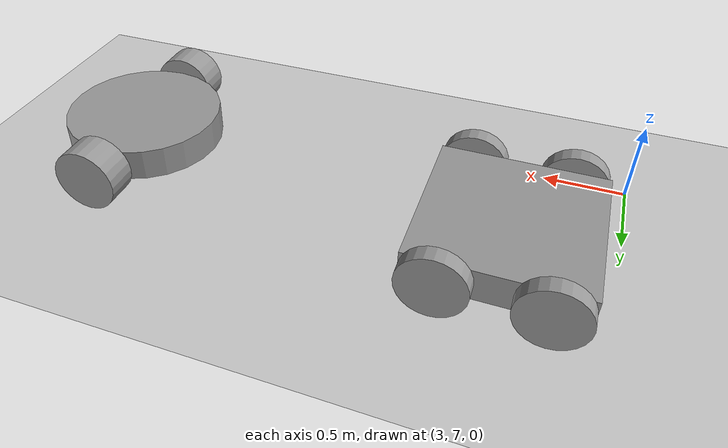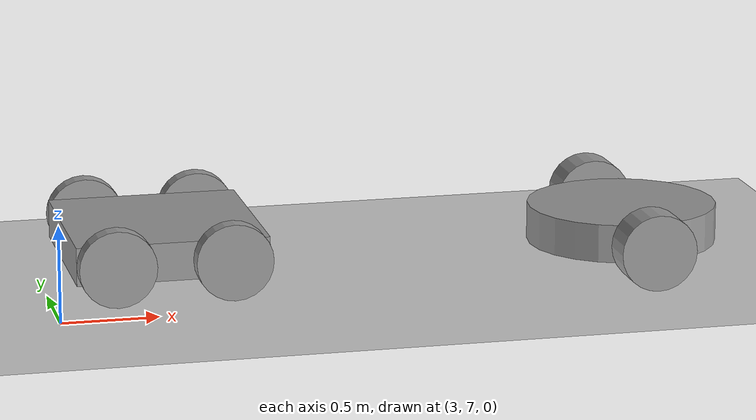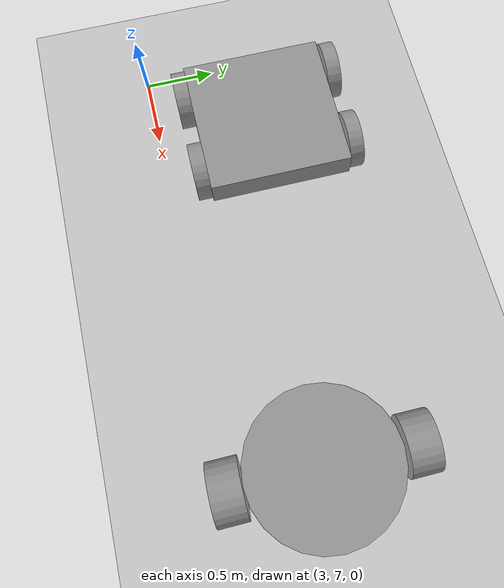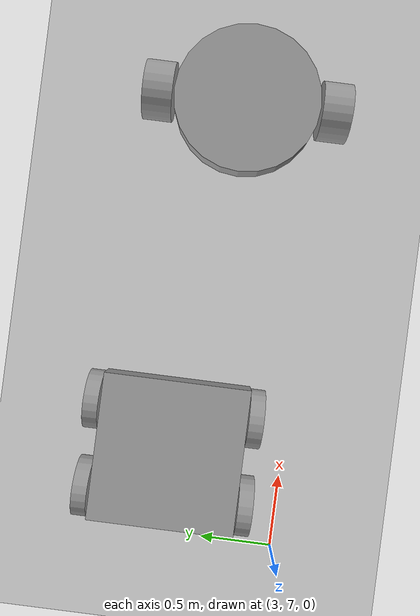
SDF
<sdf version="1.7">
 <world name="default">
  <model name="ground_plane">
   <static>1</static>
   <link name="link">
    <collision name="collision">
     <geometry><plane><normal>0 0 1</normal><size>100 100</size></plane></geometry>
     <surface>
      <contact><collide_bitmask>65535</collide_bitmask></contact>
      <friction><ode><mu>100</mu><mu2>50</mu2></ode></friction>
     </surface>
    </collision>
    <visual name="visual">
     <cast_shadows>0</cast_shadows>
     <geometry><plane><normal>0 0 1</normal><size>100 100</size></plane></geometry>
     <material>
      <script><uri>file://media/materials/scripts/gazebo.material</uri><name>Gazebo/Grey</name></script>
     </material>
    </visual>
   </link>
  </model>
  <model name="robot4">
   <link name="link_0">
    <inertial>
     <mass>1</mass>
     <inertia>
      <ixx>0.166667</ixx>
      <ixy>0</ixy>
      <ixz>0</ixz>
      <iyy>0.166667</iyy>
      <iyz>0</iyz>
      <izz>0.166667</izz>
     </inertia>
    </inertial>
    <visual name="visual">
     <geometry><box><size>1 1 0.2</size></box></geometry>
     <material>
      <lighting>1</lighting>
      <script><uri>file://media/materials/scripts/gazebo.material</uri><name>Gazebo/Grey</name></script>
      <shader type="pixel"><normal_map>__default__</normal_map></shader>
      <ambient>0.3 0.3 0.3 1</ambient>
      <diffuse>0.7 0.7 0.7 1</diffuse>
      <specular>0.01 0.01 0.01 1</specular>
      <emissive>0 0 0 1</emissive>
     </material>
    </visual>
    <collision name="collision">
     <geometry><box><size>1 1 0.2</size></box></geometry>
     <surface>
      <friction>
       <ode><mu>1</mu><mu2>1</mu2><fdir1>0 0 0</fdir1><slip1>0</slip1><slip2>0</slip2></ode>
       <torsional>
        <coefficient>1</coefficient>
        <patch_radius>0</patch_radius>
        <surface_radius>0</surface_radius>
        <use_patch_radius>1</use_patch_radius>
        <ode><slip>0</slip></ode>
       </torsional>
      </friction>
      <bounce><restitution_coefficient>0</restitution_coefficient><threshold>1e+06</threshold></bounce>
      <contact>
       <collide_without_contact>0</collide_without_contact>
       <collide_without_contact_bitmask>1</collide_without_contact_bitmask>
       <collide_bitmask>1</collide_bitmask>
       <ode>
        <soft_cfm>0</soft_cfm>
        <soft_erp>0.2</soft_erp>
        <kp>1e+13</kp>
        <kd>1</kd>
        <max_vel>0.01</max_vel>
        <min_depth>0</min_depth>
       </ode>
       <bullet>
        <split_impulse>1</split_impulse>
        <split_impulse_penetration_threshold>-0.01</split_impulse_penetration_threshold>
        <soft_cfm>0</soft_cfm>
        <soft_erp>0.2</soft_erp>
        <kp>1e+13</kp>
        <kd>1</kd>
       </bullet>
      </contact>
     </surface>
    </collision>
   </link>
   <link name="link_1">
    <inertial>
     <mass>1</mass>
     <inertia><ixx>0.145833</ixx><ixy>0</ixy><ixz>0</ixz><iyy>0.145833</iyy><iyz>0</iyz><izz>0.125</izz></inertia>
    </inertial>
    <pose>0.3 -0.550019 0 1.5707 -0 0</pose>
    <visual name="visual">
     <geometry><cylinder><radius>0.2</radius><length>0.1</length></cylinder></geometry>
     <material>
      <lighting>1</lighting>
      <script><uri>file://media/materials/scripts/gazebo.material</uri><name>Gazebo/Grey</name></script>
      <shader type="pixel"><normal_map>__default__</normal_map></shader>
      <ambient>0.3 0.3 0.3 1</ambient>
      <diffuse>0.7 0.7 0.7 1</diffuse>
      <specular>0.01 0.01 0.01 1</specular>
      <emissive>0 0 0 1</emissive>
     </material>
    </visual>
    <collision name="collision">
     <geometry><cylinder><radius>0.2</radius><length>0.1</length></cylinder></geometry>
     <surface>
      <friction>
       <ode><mu>1</mu><mu2>1</mu2><fdir1>0 0 0</fdir1><slip1>0</slip1><slip2>0</slip2></ode>
       <torsional>
        <coefficient>1</coefficient>
        <patch_radius>0</patch_radius>
        <surface_radius>0</surface_radius>
        <use_patch_radius>1</use_patch_radius>
        <ode><slip>0</slip></ode>
       </torsional>
      </friction>
      <bounce><restitution_coefficient>0</restitution_coefficient><threshold>1e+06</threshold></bounce>
      <contact>
       <collide_without_contact>0</collide_without_contact>
       <collide_without_contact_bitmask>1</collide_without_contact_bitmask>
       <collide_bitmask>1</collide_bitmask>
       <ode>
        <soft_cfm>0</soft_cfm>
        <soft_erp>0.2</soft_erp>
        <kp>1e+13</kp>
        <kd>1</kd>
        <max_vel>0.01</max_vel>
        <min_depth>0</min_depth>
       </ode>
       <bullet>
        <split_impulse>1</split_impulse>
        <split_impulse_penetration_threshold>-0.01</split_impulse_penetration_threshold>
        <soft_cfm>0</soft_cfm>
        <soft_erp>0.2</soft_erp>
        <kp>1e+13</kp>
        <kd>1</kd>
       </bullet>
      </contact>
     </surface>
    </collision>
   </link>
   <link name="link_1_clone">
    <inertial>
     <mass>1</mass>
     <inertia><ixx>0.145833</ixx><ixy>0</ixy><ixz>0</ixz><iyy>0.145833</iyy><iyz>0</iyz><izz>0.125</izz></inertia>
    </inertial>
    <pose>0.3 0.550019 0 1.5707 -0 0</pose>
    <visual name="visual">
     <geometry><cylinder><radius>0.2</radius><length>0.1</length></cylinder></geometry>
     <material>
      <lighting>1</lighting>
      <script><uri>file://media/materials/scripts/gazebo.material</uri><name>Gazebo/Grey</name></script>
      <shader type="pixel"><normal_map>__default__</normal_map></shader>
      <ambient>0.3 0.3 0.3 1</ambient>
      <diffuse>0.7 0.7 0.7 1</diffuse>
      <specular>0.01 0.01 0.01 1</specular>
      <emissive>0 0 0 1</emissive>
     </material>
    </visual>
    <collision name="collision">
     <geometry><cylinder><radius>0.2</radius><length>0.1</length></cylinder></geometry>
     <surface>
      <friction>
       <ode><mu>1</mu><mu2>1</mu2><fdir1>0 0 0</fdir1><slip1>0</slip1><slip2>0</slip2></ode>
       <torsional>
        <coefficient>1</coefficient>
        <patch_radius>0</patch_radius>
        <surface_radius>0</surface_radius>
        <use_patch_radius>1</use_patch_radius>
        <ode><slip>0</slip></ode>
       </torsional>
      </friction>
      <bounce><restitution_coefficient>0</restitution_coefficient><threshold>1e+06</threshold></bounce>
      <contact>
       <collide_without_contact>0</collide_without_contact>
       <collide_without_contact_bitmask>1</collide_without_contact_bitmask>
       <collide_bitmask>1</collide_bitmask>
       <ode>
        <soft_cfm>0</soft_cfm>
        <soft_erp>0.2</soft_erp>
        <kp>1e+13</kp>
        <kd>1</kd>
        <max_vel>0.01</max_vel>
        <min_depth>0</min_depth>
       </ode>
       <bullet>
        <split_impulse>1</split_impulse>
        <split_impulse_penetration_threshold>-0.01</split_impulse_penetration_threshold>
        <soft_cfm>0</soft_cfm>
        <soft_erp>0.2</soft_erp>
        <kp>1e+13</kp>
        <kd>1</kd>
       </bullet>
      </contact>
     </surface>
    </collision>
   </link>
   <link name="link_1_clone_0">
    <inertial>
     <mass>1</mass>
     <inertia><ixx>0.145833</ixx><ixy>0</ixy><ixz>0</ixz><iyy>0.145833</iyy><iyz>0</iyz><izz>0.125</izz></inertia>
    </inertial>
    <pose>-0.3 0.550019 0 1.5707 -0 0</pose>
    <visual name="visual">
     <geometry><cylinder><radius>0.2</radius><length>0.1</length></cylinder></geometry>
     <material>
      <lighting>1</lighting>
      <script><uri>file://media/materials/scripts/gazebo.material</uri><name>Gazebo/Grey</name></script>
      <shader type="pixel"><normal_map>__default__</normal_map></shader>
      <ambient>0.3 0.3 0.3 1</ambient>
      <diffuse>0.7 0.7 0.7 1</diffuse>
      <specular>0.01 0.01 0.01 1</specular>
      <emissive>0 0 0 1</emissive>
     </material>
    </visual>
    <collision name="collision">
     <geometry><cylinder><radius>0.2</radius><length>0.1</length></cylinder></geometry>
     <surface>
      <friction>
       <ode><mu>1</mu><mu2>1</mu2><fdir1>0 0 0</fdir1><slip1>0</slip1><slip2>0</slip2></ode>
       <torsional>
        <coefficient>1</coefficient>
        <patch_radius>0</patch_radius>
        <surface_radius>0</surface_radius>
        <use_patch_radius>1</use_patch_radius>
        <ode><slip>0</slip></ode>
       </torsional>
      </friction>
      <bounce><restitution_coefficient>0</restitution_coefficient><threshold>1e+06</threshold></bounce>
      <contact>
       <collide_without_contact>0</collide_without_contact>
       <collide_without_contact_bitmask>1</collide_without_contact_bitmask>
       <collide_bitmask>1</collide_bitmask>
       <ode>
        <soft_cfm>0</soft_cfm>
        <soft_erp>0.2</soft_erp>
        <kp>1e+13</kp>
        <kd>1</kd>
        <max_vel>0.01</max_vel>
        <min_depth>0</min_depth>
       </ode>
       <bullet>
        <split_impulse>1</split_impulse>
        <split_impulse_penetration_threshold>-0.01</split_impulse_penetration_threshold>
        <soft_cfm>0</soft_cfm>
        <soft_erp>0.2</soft_erp>
        <kp>1e+13</kp>
        <kd>1</kd>
       </bullet>
      </contact>
     </surface>
    </collision>
   </link>
   <link name="link_1_clone_1">
    <inertial>
     <mass>1</mass>
     <inertia><ixx>0.145833</ixx><ixy>0</ixy><ixz>0</ixz><iyy>0.145833</iyy><iyz>0</iyz><izz>0.125</izz></inertia>
    </inertial>
    <pose>-0.3 -0.550019 0 1.5707 -0 0</pose>
    <visual name="visual">
     <geometry><cylinder><radius>0.2</radius><length>0.1</length></cylinder></geometry>
     <material>
      <lighting>1</lighting>
      <script><uri>file://media/materials/scripts/gazebo.material</uri><name>Gazebo/Grey</name></script>
      <shader type="pixel"><normal_map>__default__</normal_map></shader>
      <ambient>0.3 0.3 0.3 1</ambient>
      <diffuse>0.7 0.7 0.7 1</diffuse>
      <specular>0.01 0.01 0.01 1</specular>
      <emissive>0 0 0 1</emissive>
     </material>
    </visual>
    <collision name="collision">
     <geometry><cylinder><radius>0.2</radius><length>0.1</length></cylinder></geometry>
     <surface>
      <friction>
       <ode><mu>1</mu><mu2>1</mu2><fdir1>0 0 0</fdir1><slip1>0</slip1><slip2>0</slip2></ode>
       <torsional>
        <coefficient>1</coefficient>
        <patch_radius>0</patch_radius>
        <surface_radius>0</surface_radius>
        <use_patch_radius>1</use_patch_radius>
        <ode><slip>0</slip></ode>
       </torsional>
      </friction>
      <bounce><restitution_coefficient>0</restitution_coefficient><threshold>1e+06</threshold></bounce>
      <contact>
       <collide_without_contact>0</collide_without_contact>
       <collide_without_contact_bitmask>1</collide_without_contact_bitmask>
       <collide_bitmask>1</collide_bitmask>
       <ode>
        <soft_cfm>0</soft_cfm>
        <soft_erp>0.2</soft_erp>
        <kp>1e+13</kp>
        <kd>1</kd>
        <max_vel>0.01</max_vel>
        <min_depth>0</min_depth>
       </ode>
       <bullet>
        <split_impulse>1</split_impulse>
        <split_impulse_penetration_threshold>-0.01</split_impulse_penetration_threshold>
        <soft_cfm>0</soft_cfm>
        <soft_erp>0.2</soft_erp>
        <kp>1e+13</kp>
        <kd>1</kd>
       </bullet>
      </contact>
     </surface>
    </collision>
   </link>
   <joint name="link_0_JOINT_1" type="revolute">
    <parent>link_0</parent>
    <child>link_1</child>
    <pose>0 0 0 -0.01 -0 -0.01</pose>
    <axis>
     <xyz>0 0 1</xyz>
     <limit>
      <lower>-1.79769e+308</lower>
      <upper>1.79769e+308</upper>
      <effort>-1</effort>
      <velocity>-1</velocity>
     </limit>
     <dynamics>
      <spring_reference>0</spring_reference>
      <spring_stiffness>0</spring_stiffness>
      <damping>0</damping>
     </dynamics>
    </axis>
    <physics>
     <ode><limit><cfm>0</cfm><erp>0.2</erp></limit><suspension><cfm>0</cfm><erp>0.2</erp></suspension></ode>
    </physics>
   </joint>
   <joint name="link_0_JOINT_4" type="revolute">
    <parent>link_0</parent>
    <child>link_1_clone_0</child>
    <axis>
     <xyz>0 0 1</xyz>
     <limit>
      <lower>-1.79769e+308</lower>
      <upper>1.79769e+308</upper>
      <effort>-1</effort>
      <velocity>-1</velocity>
     </limit>
     <dynamics>
      <spring_reference>0</spring_reference>
      <spring_stiffness>0</spring_stiffness>
      <damping>0</damping>
     </dynamics>
    </axis>
    <physics>
     <ode><limit><cfm>0</cfm><erp>0.2</erp></limit><suspension><cfm>0</cfm><erp>0.2</erp></suspension></ode>
    </physics>
   </joint>
   <joint name="link_0_JOINT_5" type="revolute">
    <parent>link_0</parent>
    <child>link_1_clone_1</child>
    <axis>
     <xyz>0 0 1</xyz>
     <limit>
      <lower>-1.79769e+308</lower>
      <upper>1.79769e+308</upper>
      <effort>-1</effort>
      <velocity>-1</velocity>
     </limit>
     <dynamics>
      <spring_reference>0</spring_reference>
      <spring_stiffness>0</spring_stiffness>
      <damping>0</damping>
     </dynamics>
    </axis>
    <physics>
     <ode><limit><cfm>0</cfm><erp>0.2</erp></limit><suspension><cfm>0</cfm><erp>0.2</erp></suspension></ode>
    </physics>
   </joint>
   <joint name="link_0_JOINT_6" type="revolute">
    <parent>link_0</parent>
    <child>link_1_clone</child>
    <axis>
     <xyz>0 0 1</xyz>
     <limit>
      <lower>-1.79769e+308</lower>
      <upper>1.79769e+308</upper>
      <effort>-1</effort>
      <velocity>-1</velocity>
     </limit>
     <dynamics>
      <spring_reference>0</spring_reference>
      <spring_stiffness>0</spring_stiffness>
      <damping>0</damping>
     </dynamics>
    </axis>
    <physics>
     <ode><limit><cfm>0</cfm><erp>0.2</erp></limit><suspension><cfm>0</cfm><erp>0.2</erp></suspension></ode>
    </physics>
   </joint>
   <static>0</static>
   <pose>3.6258 7.79211 0.200005 0 -0 -7.6e-05</pose>
  </model>
  <model name="robotc">
   <link name="link_0">
    <inertial>
     <mass>1</mass>
     <inertia><ixx>0.145833</ixx><ixy>0</ixy><ixz>0</ixz><iyy>0.145833</iyy><iyz>0</iyz><izz>0.125</izz></inertia>
    </inertial>
    <pose>0 1e-06 0 0 -0 0</pose>
    <visual name="visual">
     <geometry><cylinder><radius>0.5</radius><length>0.2</length></cylinder></geometry>
     <material>
      <lighting>1</lighting>
      <script><uri>file://media/materials/scripts/gazebo.material</uri><name>Gazebo/Grey</name></script>
      <shader type="pixel"><normal_map>__default__</normal_map></shader>
      <ambient>0.3 0.3 0.3 1</ambient>
      <diffuse>0.7 0.7 0.7 1</diffuse>
      <specular>0.01 0.01 0.01 1</specular>
      <emissive>0 0 0 1</emissive>
     </material>
    </visual>
    <collision name="collision">
     <geometry><cylinder><radius>0.5</radius><length>0.2</length></cylinder></geometry>
     <surface>
      <friction>
       <ode><mu>1</mu><mu2>1</mu2><fdir1>0 0 0</fdir1><slip1>0</slip1><slip2>0</slip2></ode>
       <torsional>
        <coefficient>1</coefficient>
        <patch_radius>0</patch_radius>
        <surface_radius>0</surface_radius>
        <use_patch_radius>1</use_patch_radius>
        <ode><slip>0</slip></ode>
       </torsional>
      </friction>
      <bounce><restitution_coefficient>0</restitution_coefficient><threshold>1e+06</threshold></bounce>
      <contact>
       <collide_without_contact>0</collide_without_contact>
       <collide_without_contact_bitmask>1</collide_without_contact_bitmask>
       <collide_bitmask>1</collide_bitmask>
       <ode>
        <soft_cfm>0</soft_cfm>
        <soft_erp>0.2</soft_erp>
        <kp>1e+13</kp>
        <kd>1</kd>
        <max_vel>0.01</max_vel>
        <min_depth>0</min_depth>
       </ode>
       <bullet>
        <split_impulse>1</split_impulse>
        <split_impulse_penetration_threshold>-0.01</split_impulse_penetration_threshold>
        <soft_cfm>0</soft_cfm>
        <soft_erp>0.2</soft_erp>
        <kp>1e+13</kp>
        <kd>1</kd>
       </bullet>
      </contact>
     </surface>
    </collision>
   </link>
   <link name="link_1">
    <inertial>
     <mass>1</mass>
     <inertia><ixx>0.145833</ixx><ixy>0</ixy><ixz>0</ixz><iyy>0.145833</iyy><iyz>0</iyz><izz>0.125</izz></inertia>
    </inertial>
    <pose>0 -0.600019 0 1.5707 -0 0</pose>
    <visual name="visual">
     <geometry><cylinder><radius>0.2</radius><length>0.2</length></cylinder></geometry>
     <material>
      <lighting>1</lighting>
      <script><uri>file://media/materials/scripts/gazebo.material</uri><name>Gazebo/Grey</name></script>
      <shader type="pixel"><normal_map>__default__</normal_map></shader>
      <ambient>0.3 0.3 0.3 1</ambient>
      <diffuse>0.7 0.7 0.7 1</diffuse>
      <specular>0.01 0.01 0.01 1</specular>
      <emissive>0 0 0 1</emissive>
     </material>
    </visual>
    <collision name="collision">
     <geometry><cylinder><radius>0.2</radius><length>0.2</length></cylinder></geometry>
     <surface>
      <friction>
       <ode><mu>1</mu><mu2>1</mu2><fdir1>0 0 0</fdir1><slip1>0</slip1><slip2>0</slip2></ode>
       <torsional>
        <coefficient>1</coefficient>
        <patch_radius>0</patch_radius>
        <surface_radius>0</surface_radius>
        <use_patch_radius>1</use_patch_radius>
        <ode><slip>0</slip></ode>
       </torsional>
      </friction>
      <bounce><restitution_coefficient>0</restitution_coefficient><threshold>1e+06</threshold></bounce>
      <contact>
       <collide_without_contact>0</collide_without_contact>
       <collide_without_contact_bitmask>1</collide_without_contact_bitmask>
       <collide_bitmask>1</collide_bitmask>
       <ode>
        <soft_cfm>0</soft_cfm>
        <soft_erp>0.2</soft_erp>
        <kp>1e+13</kp>
        <kd>1</kd>
        <max_vel>0.01</max_vel>
        <min_depth>0</min_depth>
       </ode>
       <bullet>
        <split_impulse>1</split_impulse>
        <split_impulse_penetration_threshold>-0.01</split_impulse_penetration_threshold>
        <soft_cfm>0</soft_cfm>
        <soft_erp>0.2</soft_erp>
        <kp>1e+13</kp>
        <kd>1</kd>
       </bullet>
      </contact>
     </surface>
    </collision>
   </link>
   <link name="link_1_clone">
    <inertial>
     <mass>1</mass>
     <inertia><ixx>0.145833</ixx><ixy>0</ixy><ixz>0</ixz><iyy>0.145833</iyy><iyz>0</iyz><izz>0.125</izz></inertia>
    </inertial>
    <pose>0 0.60002 0 1.5707 -0 0</pose>
    <visual name="visual">
     <geometry><cylinder><radius>0.2</radius><length>0.2</length></cylinder></geometry>
     <material>
      <lighting>1</lighting>
      <script><uri>file://media/materials/scripts/gazebo.material</uri><name>Gazebo/Grey</name></script>
      <shader type="pixel"><normal_map>__default__</normal_map></shader>
      <ambient>0.3 0.3 0.3 1</ambient>
      <diffuse>0.7 0.7 0.7 1</diffuse>
      <specular>0.01 0.01 0.01 1</specular>
      <emissive>0 0 0 1</emissive>
     </material>
    </visual>
    <collision name="collision">
     <geometry><cylinder><radius>0.2</radius><length>0.2</length></cylinder></geometry>
     <surface>
      <friction>
       <ode><mu>1</mu><mu2>1</mu2><fdir1>0 0 0</fdir1><slip1>0</slip1><slip2>0</slip2></ode>
       <torsional>
        <coefficient>1</coefficient>
        <patch_radius>0</patch_radius>
        <surface_radius>0</surface_radius>
        <use_patch_radius>1</use_patch_radius>
        <ode><slip>0</slip></ode>
       </torsional>
      </friction>
      <bounce><restitution_coefficient>0</restitution_coefficient><threshold>1e+06</threshold></bounce>
      <contact>
       <collide_without_contact>0</collide_without_contact>
       <collide_without_contact_bitmask>1</collide_without_contact_bitmask>
       <collide_bitmask>1</collide_bitmask>
       <ode>
        <soft_cfm>0</soft_cfm>
        <soft_erp>0.2</soft_erp>
        <kp>1e+13</kp>
        <kd>1</kd>
        <max_vel>0.01</max_vel>
        <min_depth>0</min_depth>
       </ode>
       <bullet>
        <split_impulse>1</split_impulse>
        <split_impulse_penetration_threshold>-0.01</split_impulse_penetration_threshold>
        <soft_cfm>0</soft_cfm>
        <soft_erp>0.2</soft_erp>
        <kp>1e+13</kp>
        <kd>1</kd>
       </bullet>
      </contact>
     </surface>
    </collision>
   </link>
   <joint name="link_0_JOINT_0" type="revolute">
    <parent>link_0</parent>
    <child>link_1</child>
    <axis>
     <xyz>0 0 1</xyz>
     <limit>
      <lower>-1.79769e+308</lower>
      <upper>1.79769e+308</upper>
      <effort>-1</effort>
      <velocity>-1</velocity>
     </limit>
     <dynamics>
      <spring_reference>0</spring_reference>
      <spring_stiffness>0</spring_stiffness>
      <damping>0</damping>
     </dynamics>
    </axis>
    <physics>
     <ode><limit><cfm>0</cfm><erp>0.2</erp></limit><suspension><cfm>0</cfm><erp>0.2</erp></suspension></ode>
    </physics>
   </joint>
   <joint name="link_0_JOINT_1" type="revolute">
    <parent>link_0</parent>
    <child>link_1_clone</child>
    <axis>
     <xyz>0 0 1</xyz>
     <limit>
      <lower>-1.79769e+308</lower>
      <upper>1.79769e+308</upper>
      <effort>-1</effort>
      <velocity>-1</velocity>
     </limit>
     <dynamics>
      <spring_reference>0</spring_reference>
      <spring_stiffness>0</spring_stiffness>
      <damping>0</damping>
     </dynamics>
    </axis>
    <physics>
     <ode><limit><cfm>0</cfm><erp>0.2</erp></limit><suspension><cfm>0</cfm><erp>0.2</erp></suspension></ode>
    </physics>
   </joint>
   <static>0</static>
   <pose>6.07749 7.56793 0.20001 0 -5.8e-05 0.000102</pose>
  </model>
 </world>
</sdf>
